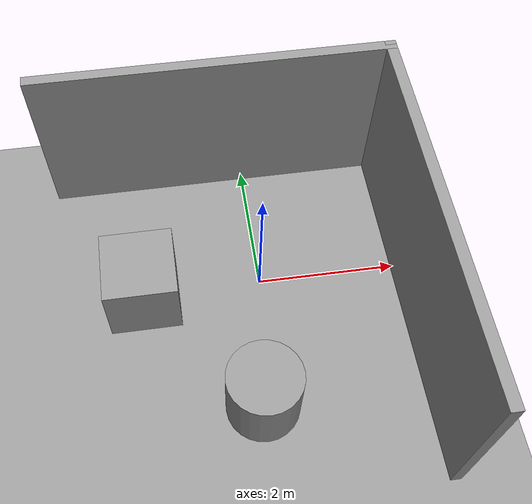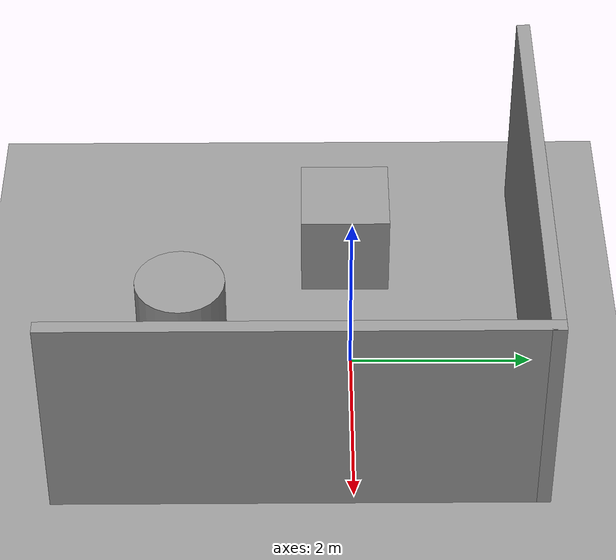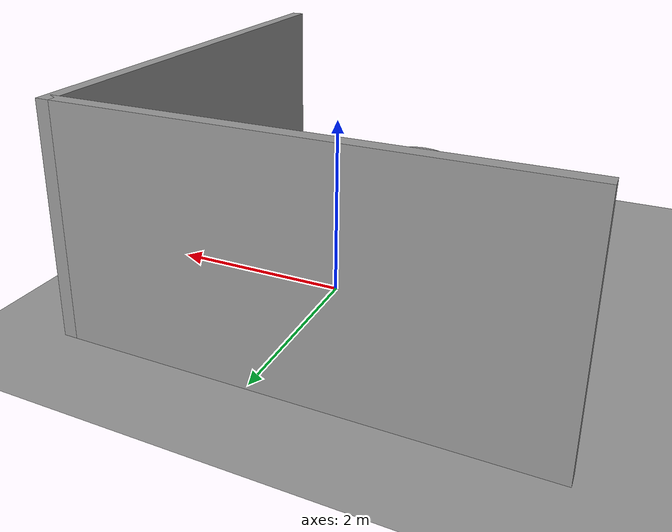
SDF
<sdf version="1.6">
 <world name="default">
  <light name="sun" type="directional">
   <pose>0 0 10 0 -0 0</pose>
   <diffuse>0.8 0.8 0.8 1</diffuse>
   <specular>0.2 0.2 0.2 1</specular>
   <attenuation>
    <range>1000</range>
    <constant>0.9</constant>
    <linear>0.01</linear>
    <quadratic>0.001</quadratic>
   </attenuation>
   <direction>0.5 0.1 -0.9</direction>
  </light>
  <scene><ambient>0.4 0.4 0.4 1</ambient><background>0.7 0.7 0.7 1</background><shadows>1</shadows></scene>
  <physics name="default_physics" default="0" type="ode">
   <max_step_size>0.01</max_step_size>
   <real_time_factor>1</real_time_factor>
   <real_time_update_rate>100</real_time_update_rate>
  </physics>
  <model name="ground_plane_0">
   <static>1</static>
   <link name="link">
    <collision name="collision">
     <geometry><plane><normal>0 0 1</normal><size>100 100</size></plane></geometry>
     <surface><friction><ode><mu>100</mu><mu2>50</mu2></ode></friction></surface>
    </collision>
    <visual name="visual">
     <cast_shadows>0</cast_shadows>
     <geometry><plane><normal>0 0 1</normal><size>100 100</size></plane></geometry>
     <material>
      <script><uri>file://media/materials/scripts/gazebo.material</uri><name>Gazebo/Grey</name></script>
     </material>
    </visual>
    <velocity_decay><linear>0</linear><angular>0</angular></velocity_decay>
   </link>
   <pose>0.497681 0 0 0 -0 0</pose>
  </model>
  <gravity>0 0 -9.8</gravity>
  <magnetic_field>6e-06 2.3e-05 -4.2e-05</magnetic_field>
  <atmosphere type="adiabatic"/>
  <spherical_coordinates>
   <surface_model>EARTH_WGS84</surface_model>
   <latitude_deg>0</latitude_deg>
   <longitude_deg>0</longitude_deg>
   <elevation>0</elevation>
   <heading_deg>0</heading_deg>
  </spherical_coordinates>
  <model name="tt">
   <pose>-0.385 -0.56 0 0 -0 0</pose>
   <link name="Wall_1">
    <collision name="Wall_1_Collision">
     <geometry><box><size>5.25 0.15 2.5</size></box></geometry>
     <pose>0 0 1.25 0 -0 0</pose>
    </collision>
    <visual name="Wall_1_Visual">
     <pose>0 0 1.25 0 -0 0</pose>
     <geometry><box><size>5.25 0.15 2.5</size></box></geometry>
     <material>
      <script><uri>file://media/materials/scripts/gazebo.material</uri><name>Gazebo/Grey</name></script>
      <ambient>1 1 1 1</ambient>
     </material>
    </visual>
    <pose>2.425 0 0 0 -0 1.5708</pose>
   </link>
   <link name="Wall_3">
    <collision name="Wall_3_Collision">
     <geometry><box><size>5 0.15 2.5</size></box></geometry>
     <pose>0 0 1.25 0 -0 0</pose>
    </collision>
    <visual name="Wall_3_Visual">
     <pose>0 0 1.25 0 -0 0</pose>
     <geometry><box><size>5 0.15 2.5</size></box></geometry>
     <material>
      <script><uri>file://media/materials/scripts/gazebo.material</uri><name>Gazebo/Grey</name></script>
      <ambient>1 1 1 1</ambient>
     </material>
    </visual>
    <pose>0 2.55 0 0 -0 3.14159</pose>
   </link>
   <static>1</static>
  </model>
  <model name="unit_box_0_0">
   <pose>-1.67938 -0.042077 0.49907 -0.0001 0 0</pose>
   <link name="link">
    <inertial>
     <mass>1</mass>
     <inertia>
      <ixx>0.166667</ixx>
      <ixy>0</ixy>
      <ixz>0</ixz>
      <iyy>0.166667</iyy>
      <iyz>0</iyz>
      <izz>0.166667</izz>
     </inertia>
    </inertial>
    <collision name="collision"><geometry><box><size>1 1 1</size></box></geometry></collision>
    <visual name="visual">
     <geometry><box><size>1 1 1</size></box></geometry>
     <material>
      <script><name>Gazebo/Grey</name><uri>file://media/materials/scripts/gazebo.material</uri></script>
     </material>
    </visual>
   </link>
  </model>
  <model name="unit_cylinder_0">
   <pose>-0.234603 -1.87695 0.499096 4.8e-05 4.8e-05 -1e-06</pose>
   <link name="link">
    <inertial>
     <mass>1</mass>
     <inertia><ixx>0.145833</ixx><ixy>0</ixy><ixz>0</ixz><iyy>0.145833</iyy><iyz>0</iyz><izz>0.125</izz></inertia>
    </inertial>
    <collision name="collision">
     <geometry><cylinder><radius>0.5</radius><length>1</length></cylinder></geometry>
    </collision>
    <visual name="visual">
     <geometry><cylinder><radius>0.5</radius><length>1</length></cylinder></geometry>
     <material>
      <script><name>Gazebo/Grey</name><uri>file://media/materials/scripts/gazebo.material</uri></script>
     </material>
    </visual>
   </link>
  </model>
 </world>
</sdf>
